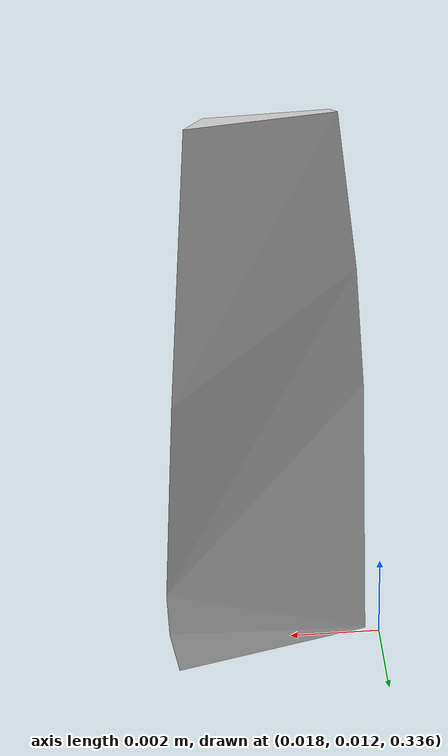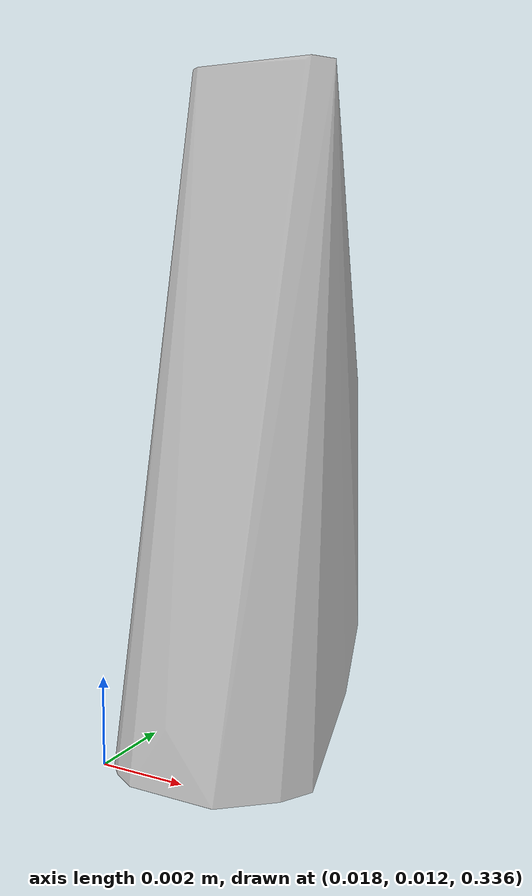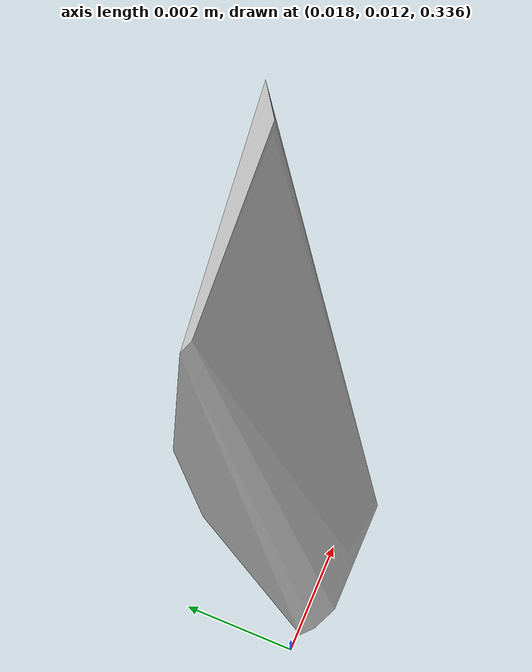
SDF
<?xml version="1.0"?>
<sdf version="1.7">
  <model name="vascular_partexport026">
    <link name="vascular_partexport026_body">
      <visual name="vascular_partexport026_visual">
        <geometry>
          <mesh>
            <uri>vascular_partexport026.obj</uri>
          </mesh>
        </geometry>
      </visual>
      <collision name="vascular_partexport026_collision">
        <geometry>
          <mesh>
            <uri>vascular_partexport026.obj</uri>
          </mesh>
        </geometry>
      </collision>
    </link>
    <frame name="vascular_partexport026_center">
      <pose relative_to="vascular_partexport026_body">0 0 0 0 0 0</pose>
    </frame>
  </model>
</sdf>
